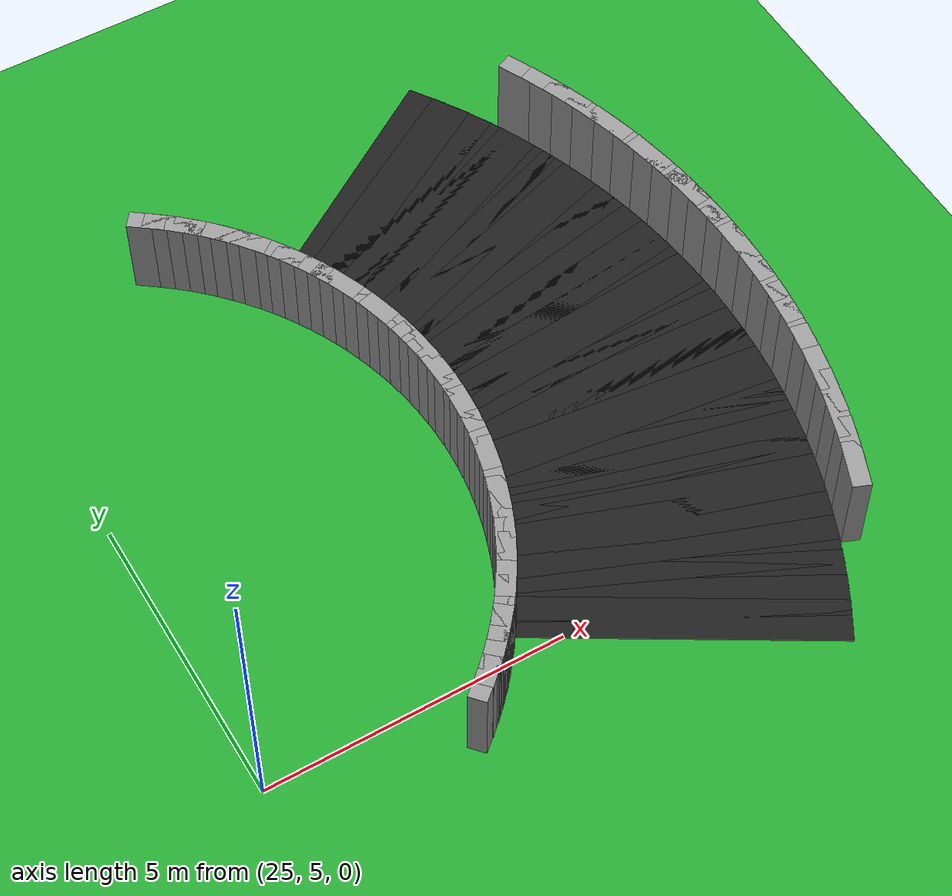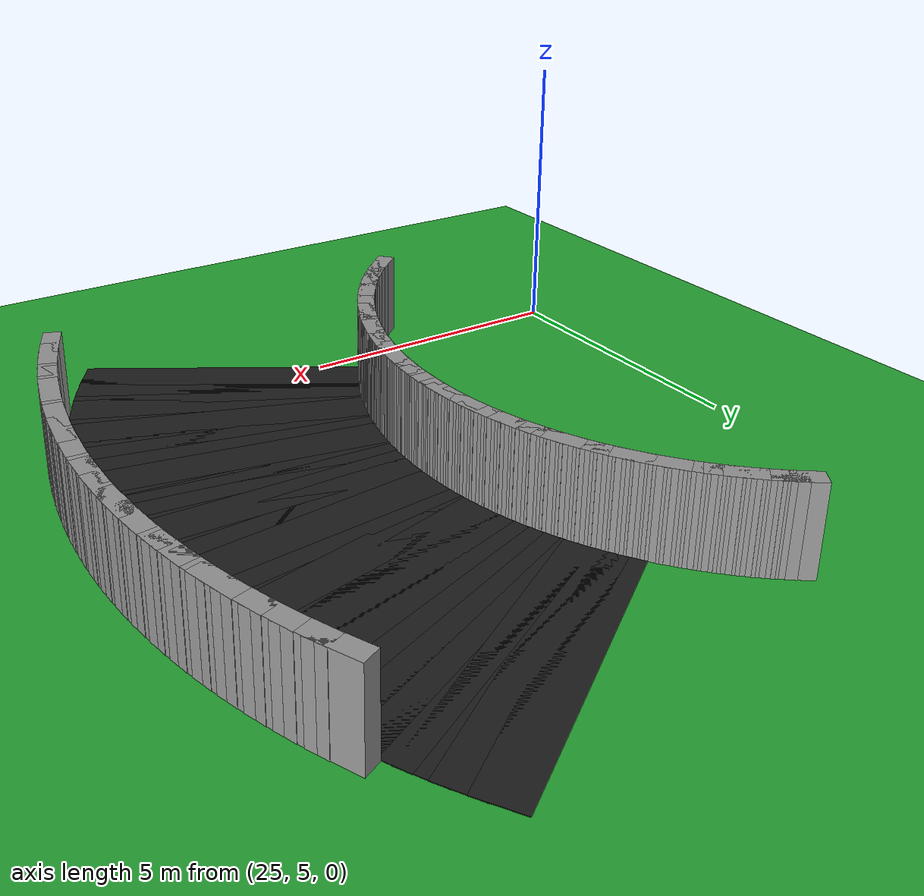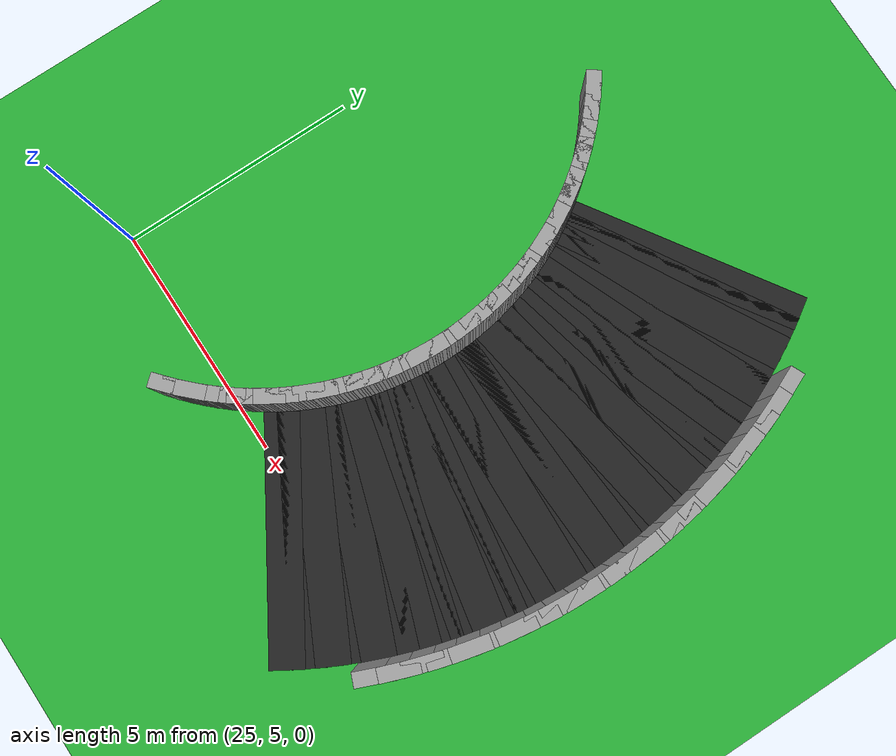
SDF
<sdf version="1.6">
 <world name="loop_stadium">
  <include><uri>model://sun</uri></include>
  <model name="ground_plane">
   <static>true</static>
   <link name="link">
    <collision name="collision">
     <surface><friction><ode><mu>100</mu><mu2>50</mu2></ode></friction></surface>
     <geometry><plane><normal>0 0 1</normal><size>120 120</size></plane></geometry>
    </collision>
    <visual name="visual">
     <geometry><plane><normal>0 0 1</normal><size>120 120</size></plane></geometry>
     <material>
      <script><uri>file://media/materials/scripts/gazebo.material</uri><name>Gazebo/Green</name></script>
     </material>
    </visual>
   </link>
  </model>
  <model name="curbL_87">
   <static>true</static>
   <pose>28.175 4.217 0.750 0 0 0.71752</pose>
   <link name="link">
    <collision name="collision"><geometry><box><size>0.606 0.300 1.500</size></box></geometry></collision>
    <visual name="visual">
     <geometry><box><size>0.606 0.300 1.500</size></box></geometry>
     <material>
      <script><uri>file://media/materials/scripts/gazebo.material</uri><name>Gazebo/Grey</name></script>
     </material>
    </visual>
   </link>
  </model>
  <model name="curbL_88">
   <static>true</static>
   <pose>28.357 4.382 0.750 0 0 0.75631</pose>
   <link name="link">
    <collision name="collision"><geometry><box><size>0.606 0.300 1.500</size></box></geometry></collision>
    <visual name="visual">
     <geometry><box><size>0.606 0.300 1.500</size></box></geometry>
     <material>
      <script><uri>file://media/materials/scripts/gazebo.material</uri><name>Gazebo/Grey</name></script>
     </material>
    </visual>
   </link>
  </model>
  <model name="curbL_89">
   <static>true</static>
   <pose>28.533 4.555 0.750 0 0 0.79509</pose>
   <link name="link">
    <collision name="collision"><geometry><box><size>0.606 0.300 1.500</size></box></geometry></collision>
    <visual name="visual">
     <geometry><box><size>0.606 0.300 1.500</size></box></geometry>
     <material>
      <script><uri>file://media/materials/scripts/gazebo.material</uri><name>Gazebo/Grey</name></script>
     </material>
    </visual>
   </link>
  </model>
  <model name="curbL_90">
   <static>true</static>
   <pose>28.702 4.734 0.750 0 0 0.83388</pose>
   <link name="link">
    <collision name="collision"><geometry><box><size>0.606 0.300 1.500</size></box></geometry></collision>
    <visual name="visual">
     <geometry><box><size>0.606 0.300 1.500</size></box></geometry>
     <material>
      <script><uri>file://media/materials/scripts/gazebo.material</uri><name>Gazebo/Grey</name></script>
     </material>
    </visual>
   </link>
  </model>
  <model name="curbL_91">
   <static>true</static>
   <pose>28.864 4.919 0.750 0 0 0.87266</pose>
   <link name="link">
    <collision name="collision"><geometry><box><size>0.606 0.300 1.500</size></box></geometry></collision>
    <visual name="visual">
     <geometry><box><size>0.606 0.300 1.500</size></box></geometry>
     <material>
      <script><uri>file://media/materials/scripts/gazebo.material</uri><name>Gazebo/Grey</name></script>
     </material>
    </visual>
   </link>
  </model>
  <model name="curbL_92">
   <static>true</static>
   <pose>29.018 5.111 0.750 0 0 0.91145</pose>
   <link name="link">
    <collision name="collision"><geometry><box><size>0.606 0.300 1.500</size></box></geometry></collision>
    <visual name="visual">
     <geometry><box><size>0.606 0.300 1.500</size></box></geometry>
     <material>
      <script><uri>file://media/materials/scripts/gazebo.material</uri><name>Gazebo/Grey</name></script>
     </material>
    </visual>
   </link>
  </model>
  <model name="curbL_93">
   <static>true</static>
   <pose>29.166 5.308 0.750 0 0 0.95023</pose>
   <link name="link">
    <collision name="collision"><geometry><box><size>0.606 0.300 1.500</size></box></geometry></collision>
    <visual name="visual">
     <geometry><box><size>0.606 0.300 1.500</size></box></geometry>
     <material>
      <script><uri>file://media/materials/scripts/gazebo.material</uri><name>Gazebo/Grey</name></script>
     </material>
    </visual>
   </link>
  </model>
  <model name="curbL_94">
   <static>true</static>
   <pose>29.305 5.512 0.750 0 0 0.98902</pose>
   <link name="link">
    <collision name="collision"><geometry><box><size>0.606 0.300 1.500</size></box></geometry></collision>
    <visual name="visual">
     <geometry><box><size>0.606 0.300 1.500</size></box></geometry>
     <material>
      <script><uri>file://media/materials/scripts/gazebo.material</uri><name>Gazebo/Grey</name></script>
     </material>
    </visual>
   </link>
  </model>
  <model name="asphalt_95">
   <static>true</static>
   <pose>31.705 4.351 0.005 0 0 1.02781</pose>
   <link name="link">
    <visual name="visual">
     <geometry><box><size>0.709 5.000 0.010</size></box></geometry>
     <material>
      <script><uri>file://media/materials/scripts/gazebo.material</uri><name>Gazebo/Black</name></script>
     </material>
    </visual>
   </link>
  </model>
  <model name="curbL_95">
   <static>true</static>
   <pose>29.436 5.720 0.750 0 0 1.02781</pose>
   <link name="link">
    <collision name="collision"><geometry><box><size>0.606 0.300 1.500</size></box></geometry></collision>
    <visual name="visual">
     <geometry><box><size>0.606 0.300 1.500</size></box></geometry>
     <material>
      <script><uri>file://media/materials/scripts/gazebo.material</uri><name>Gazebo/Grey</name></script>
     </material>
    </visual>
   </link>
  </model>
  <model name="asphalt_96">
   <static>true</static>
   <pose>31.879 4.653 0.005 0 0 1.06659</pose>
   <link name="link">
    <visual name="visual">
     <geometry><box><size>0.709 5.000 0.010</size></box></geometry>
     <material>
      <script><uri>file://media/materials/scripts/gazebo.material</uri><name>Gazebo/Black</name></script>
     </material>
    </visual>
   </link>
  </model>
  <model name="curbL_96">
   <static>true</static>
   <pose>29.559 5.933 0.750 0 0 1.06659</pose>
   <link name="link">
    <collision name="collision"><geometry><box><size>0.606 0.300 1.500</size></box></geometry></collision>
    <visual name="visual">
     <geometry><box><size>0.606 0.300 1.500</size></box></geometry>
     <material>
      <script><uri>file://media/materials/scripts/gazebo.material</uri><name>Gazebo/Grey</name></script>
     </material>
    </visual>
   </link>
  </model>
  <model name="asphalt_97">
   <static>true</static>
   <pose>32.042 4.962 0.005 0 0 1.10538</pose>
   <link name="link">
    <visual name="visual">
     <geometry><box><size>0.709 5.000 0.010</size></box></geometry>
     <material>
      <script><uri>file://media/materials/scripts/gazebo.material</uri><name>Gazebo/Black</name></script>
     </material>
    </visual>
   </link>
  </model>
  <model name="curbL_97">
   <static>true</static>
   <pose>29.674 6.151 0.750 0 0 1.10538</pose>
   <link name="link">
    <collision name="collision"><geometry><box><size>0.606 0.300 1.500</size></box></geometry></collision>
    <visual name="visual">
     <geometry><box><size>0.606 0.300 1.500</size></box></geometry>
     <material>
      <script><uri>file://media/materials/scripts/gazebo.material</uri><name>Gazebo/Grey</name></script>
     </material>
    </visual>
   </link>
  </model>
  <model name="asphalt_98">
   <static>true</static>
   <pose>32.192 5.277 0.005 0 0 1.14416</pose>
   <link name="link">
    <visual name="visual">
     <geometry><box><size>0.709 5.000 0.010</size></box></geometry>
     <material>
      <script><uri>file://media/materials/scripts/gazebo.material</uri><name>Gazebo/Black</name></script>
     </material>
    </visual>
   </link>
  </model>
  <model name="curbL_98">
   <static>true</static>
   <pose>29.780 6.373 0.750 0 0 1.14416</pose>
   <link name="link">
    <collision name="collision"><geometry><box><size>0.606 0.300 1.500</size></box></geometry></collision>
    <visual name="visual">
     <geometry><box><size>0.606 0.300 1.500</size></box></geometry>
     <material>
      <script><uri>file://media/materials/scripts/gazebo.material</uri><name>Gazebo/Grey</name></script>
     </material>
    </visual>
   </link>
  </model>
  <model name="asphalt_99">
   <static>true</static>
   <pose>32.330 5.597 0.005 0 0 1.18295</pose>
   <link name="link">
    <visual name="visual">
     <geometry><box><size>0.709 5.000 0.010</size></box></geometry>
     <material>
      <script><uri>file://media/materials/scripts/gazebo.material</uri><name>Gazebo/Black</name></script>
     </material>
    </visual>
   </link>
  </model>
  <model name="curbL_99">
   <static>true</static>
   <pose>29.878 6.599 0.750 0 0 1.18295</pose>
   <link name="link">
    <collision name="collision"><geometry><box><size>0.606 0.300 1.500</size></box></geometry></collision>
    <visual name="visual">
     <geometry><box><size>0.606 0.300 1.500</size></box></geometry>
     <material>
      <script><uri>file://media/materials/scripts/gazebo.material</uri><name>Gazebo/Grey</name></script>
     </material>
    </visual>
   </link>
  </model>
  <model name="curbR_99">
   <static>true</static>
   <pose>34.783 4.595 0.750 0 0 1.18295</pose>
   <link name="link">
    <collision name="collision"><geometry><box><size>0.812 0.300 1.500</size></box></geometry></collision>
    <visual name="visual">
     <geometry><box><size>0.812 0.300 1.500</size></box></geometry>
     <material>
      <script><uri>file://media/materials/scripts/gazebo.material</uri><name>Gazebo/Grey</name></script>
     </material>
    </visual>
   </link>
  </model>
  <model name="asphalt_100">
   <static>true</static>
   <pose>32.456 5.923 0.005 0 0 1.22173</pose>
   <link name="link">
    <visual name="visual">
     <geometry><box><size>0.709 5.000 0.010</size></box></geometry>
     <material>
      <script><uri>file://media/materials/scripts/gazebo.material</uri><name>Gazebo/Black</name></script>
     </material>
    </visual>
   </link>
  </model>
  <model name="curbL_100">
   <static>true</static>
   <pose>29.966 6.829 0.750 0 0 1.22173</pose>
   <link name="link">
    <collision name="collision"><geometry><box><size>0.606 0.300 1.500</size></box></geometry></collision>
    <visual name="visual">
     <geometry><box><size>0.606 0.300 1.500</size></box></geometry>
     <material>
      <script><uri>file://media/materials/scripts/gazebo.material</uri><name>Gazebo/Grey</name></script>
     </material>
    </visual>
   </link>
  </model>
  <model name="curbR_100">
   <static>true</static>
   <pose>34.946 5.017 0.750 0 0 1.22173</pose>
   <link name="link">
    <collision name="collision"><geometry><box><size>0.812 0.300 1.500</size></box></geometry></collision>
    <visual name="visual">
     <geometry><box><size>0.812 0.300 1.500</size></box></geometry>
     <material>
      <script><uri>file://media/materials/scripts/gazebo.material</uri><name>Gazebo/Grey</name></script>
     </material>
    </visual>
   </link>
  </model>
  <model name="asphalt_101">
   <static>true</static>
   <pose>32.569 6.253 0.005 0 0 1.26052</pose>
   <link name="link">
    <visual name="visual">
     <geometry><box><size>0.709 5.000 0.010</size></box></geometry>
     <material>
      <script><uri>file://media/materials/scripts/gazebo.material</uri><name>Gazebo/Black</name></script>
     </material>
    </visual>
   </link>
  </model>
  <model name="curbL_101">
   <static>true</static>
   <pose>30.046 7.062 0.750 0 0 1.26052</pose>
   <link name="link">
    <collision name="collision"><geometry><box><size>0.606 0.300 1.500</size></box></geometry></collision>
    <visual name="visual">
     <geometry><box><size>0.606 0.300 1.500</size></box></geometry>
     <material>
      <script><uri>file://media/materials/scripts/gazebo.material</uri><name>Gazebo/Grey</name></script>
     </material>
    </visual>
   </link>
  </model>
  <model name="curbR_101">
   <static>true</static>
   <pose>35.092 5.444 0.750 0 0 1.26052</pose>
   <link name="link">
    <collision name="collision"><geometry><box><size>0.812 0.300 1.500</size></box></geometry></collision>
    <visual name="visual">
     <geometry><box><size>0.812 0.300 1.500</size></box></geometry>
     <material>
      <script><uri>file://media/materials/scripts/gazebo.material</uri><name>Gazebo/Grey</name></script>
     </material>
    </visual>
   </link>
  </model>
  <model name="asphalt_102">
   <static>true</static>
   <pose>32.669 6.587 0.005 0 0 1.29930</pose>
   <link name="link">
    <visual name="visual">
     <geometry><box><size>0.709 5.000 0.010</size></box></geometry>
     <material>
      <script><uri>file://media/materials/scripts/gazebo.material</uri><name>Gazebo/Black</name></script>
     </material>
    </visual>
   </link>
  </model>
  <model name="curbL_102">
   <static>true</static>
   <pose>30.117 7.298 0.750 0 0 1.29930</pose>
   <link name="link">
    <collision name="collision"><geometry><box><size>0.606 0.300 1.500</size></box></geometry></collision>
    <visual name="visual">
     <geometry><box><size>0.606 0.300 1.500</size></box></geometry>
     <material>
      <script><uri>file://media/materials/scripts/gazebo.material</uri><name>Gazebo/Grey</name></script>
     </material>
    </visual>
   </link>
  </model>
  <model name="curbR_102">
   <static>true</static>
   <pose>35.222 5.877 0.750 0 0 1.29930</pose>
   <link name="link">
    <collision name="collision"><geometry><box><size>0.812 0.300 1.500</size></box></geometry></collision>
    <visual name="visual">
     <geometry><box><size>0.812 0.300 1.500</size></box></geometry>
     <material>
      <script><uri>file://media/materials/scripts/gazebo.material</uri><name>Gazebo/Grey</name></script>
     </material>
    </visual>
   </link>
  </model>
  <model name="asphalt_103">
   <static>true</static>
   <pose>32.756 6.925 0.005 0 0 1.33809</pose>
   <link name="link">
    <visual name="visual">
     <geometry><box><size>0.709 5.000 0.010</size></box></geometry>
     <material>
      <script><uri>file://media/materials/scripts/gazebo.material</uri><name>Gazebo/Black</name></script>
     </material>
    </visual>
   </link>
  </model>
  <model name="curbL_103">
   <static>true</static>
   <pose>30.178 7.536 0.750 0 0 1.33809</pose>
   <link name="link">
    <collision name="collision"><geometry><box><size>0.606 0.300 1.500</size></box></geometry></collision>
    <visual name="visual">
     <geometry><box><size>0.606 0.300 1.500</size></box></geometry>
     <material>
      <script><uri>file://media/materials/scripts/gazebo.material</uri><name>Gazebo/Grey</name></script>
     </material>
    </visual>
   </link>
  </model>
  <model name="curbR_103">
   <static>true</static>
   <pose>35.334 6.314 0.750 0 0 1.33809</pose>
   <link name="link">
    <collision name="collision"><geometry><box><size>0.812 0.300 1.500</size></box></geometry></collision>
    <visual name="visual">
     <geometry><box><size>0.812 0.300 1.500</size></box></geometry>
     <material>
      <script><uri>file://media/materials/scripts/gazebo.material</uri><name>Gazebo/Grey</name></script>
     </material>
    </visual>
   </link>
  </model>
  <model name="asphalt_104">
   <static>true</static>
   <pose>32.830 7.266 0.005 0 0 1.37687</pose>
   <link name="link">
    <visual name="visual">
     <geometry><box><size>0.709 5.000 0.010</size></box></geometry>
     <material>
      <script><uri>file://media/materials/scripts/gazebo.material</uri><name>Gazebo/Black</name></script>
     </material>
    </visual>
   </link>
  </model>
  <model name="curbL_104">
   <static>true</static>
   <pose>30.230 7.777 0.750 0 0 1.37687</pose>
   <link name="link">
    <collision name="collision"><geometry><box><size>0.606 0.300 1.500</size></box></geometry></collision>
    <visual name="visual">
     <geometry><box><size>0.606 0.300 1.500</size></box></geometry>
     <material>
      <script><uri>file://media/materials/scripts/gazebo.material</uri><name>Gazebo/Grey</name></script>
     </material>
    </visual>
   </link>
  </model>
  <model name="curbR_104">
   <static>true</static>
   <pose>35.430 6.756 0.750 0 0 1.37687</pose>
   <link name="link">
    <collision name="collision"><geometry><box><size>0.812 0.300 1.500</size></box></geometry></collision>
    <visual name="visual">
     <geometry><box><size>0.812 0.300 1.500</size></box></geometry>
     <material>
      <script><uri>file://media/materials/scripts/gazebo.material</uri><name>Gazebo/Grey</name></script>
     </material>
    </visual>
   </link>
  </model>
  <model name="asphalt_105">
   <static>true</static>
   <pose>32.891 7.610 0.005 0 0 1.41566</pose>
   <link name="link">
    <visual name="visual">
     <geometry><box><size>0.709 5.000 0.010</size></box></geometry>
     <material>
      <script><uri>file://media/materials/scripts/gazebo.material</uri><name>Gazebo/Black</name></script>
     </material>
    </visual>
   </link>
  </model>
  <model name="curbL_105">
   <static>true</static>
   <pose>30.273 8.019 0.750 0 0 1.41566</pose>
   <link name="link">
    <collision name="collision"><geometry><box><size>0.606 0.300 1.500</size></box></geometry></collision>
    <visual name="visual">
     <geometry><box><size>0.606 0.300 1.500</size></box></geometry>
     <material>
      <script><uri>file://media/materials/scripts/gazebo.material</uri><name>Gazebo/Grey</name></script>
     </material>
    </visual>
   </link>
  </model>
  <model name="curbR_105">
   <static>true</static>
   <pose>35.508 7.201 0.750 0 0 1.41566</pose>
   <link name="link">
    <collision name="collision"><geometry><box><size>0.812 0.300 1.500</size></box></geometry></collision>
    <visual name="visual">
     <geometry><box><size>0.812 0.300 1.500</size></box></geometry>
     <material>
      <script><uri>file://media/materials/scripts/gazebo.material</uri><name>Gazebo/Grey</name></script>
     </material>
    </visual>
   </link>
  </model>
  <model name="asphalt_106">
   <static>true</static>
   <pose>32.938 7.956 0.005 0 0 1.45444</pose>
   <link name="link">
    <visual name="visual">
     <geometry><box><size>0.709 5.000 0.010</size></box></geometry>
     <material>
      <script><uri>file://media/materials/scripts/gazebo.material</uri><name>Gazebo/Black</name></script>
     </material>
    </visual>
   </link>
  </model>
  <model name="curbL_106">
   <static>true</static>
   <pose>30.306 8.263 0.750 0 0 1.45444</pose>
   <link name="link">
    <collision name="collision"><geometry><box><size>0.606 0.300 1.500</size></box></geometry></collision>
    <visual name="visual">
     <geometry><box><size>0.606 0.300 1.500</size></box></geometry>
     <material>
      <script><uri>file://media/materials/scripts/gazebo.material</uri><name>Gazebo/Grey</name></script>
     </material>
    </visual>
   </link>
  </model>
  <model name="curbR_106">
   <static>true</static>
   <pose>35.570 7.648 0.750 0 0 1.45444</pose>
   <link name="link">
    <collision name="collision"><geometry><box><size>0.812 0.300 1.500</size></box></geometry></collision>
    <visual name="visual">
     <geometry><box><size>0.812 0.300 1.500</size></box></geometry>
     <material>
      <script><uri>file://media/materials/scripts/gazebo.material</uri><name>Gazebo/Grey</name></script>
     </material>
    </visual>
   </link>
  </model>
  <model name="asphalt_107">
   <static>true</static>
   <pose>32.972 8.303 0.005 0 0 1.49323</pose>
   <link name="link">
    <visual name="visual">
     <geometry><box><size>0.709 5.000 0.010</size></box></geometry>
     <material>
      <script><uri>file://media/materials/scripts/gazebo.material</uri><name>Gazebo/Black</name></script>
     </material>
    </visual>
   </link>
  </model>
  <model name="curbL_107">
   <static>true</static>
   <pose>30.330 8.509 0.750 0 0 1.49323</pose>
   <link name="link">
    <collision name="collision"><geometry><box><size>0.606 0.300 1.500</size></box></geometry></collision>
    <visual name="visual">
     <geometry><box><size>0.606 0.300 1.500</size></box></geometry>
     <material>
      <script><uri>file://media/materials/scripts/gazebo.material</uri><name>Gazebo/Grey</name></script>
     </material>
    </visual>
   </link>
  </model>
  <model name="curbR_107">
   <static>true</static>
   <pose>35.613 8.098 0.750 0 0 1.49323</pose>
   <link name="link">
    <collision name="collision"><geometry><box><size>0.812 0.300 1.500</size></box></geometry></collision>
    <visual name="visual">
     <geometry><box><size>0.812 0.300 1.500</size></box></geometry>
     <material>
      <script><uri>file://media/materials/scripts/gazebo.material</uri><name>Gazebo/Grey</name></script>
     </material>
    </visual>
   </link>
  </model>
  <model name="asphalt_108">
   <static>true</static>
   <pose>32.992 8.652 0.005 0 0 1.53201</pose>
   <link name="link">
    <visual name="visual">
     <geometry><box><size>0.709 5.000 0.010</size></box></geometry>
     <material>
      <script><uri>file://media/materials/scripts/gazebo.material</uri><name>Gazebo/Black</name></script>
     </material>
    </visual>
   </link>
  </model>
  <model name="curbL_108">
   <static>true</static>
   <pose>30.345 8.754 0.750 0 0 1.53201</pose>
   <link name="link">
    <collision name="collision"><geometry><box><size>0.606 0.300 1.500</size></box></geometry></collision>
    <visual name="visual">
     <geometry><box><size>0.606 0.300 1.500</size></box></geometry>
     <material>
      <script><uri>file://media/materials/scripts/gazebo.material</uri><name>Gazebo/Grey</name></script>
     </material>
    </visual>
   </link>
  </model>
  <model name="curbR_108">
   <static>true</static>
   <pose>35.640 8.549 0.750 0 0 1.53201</pose>
   <link name="link">
    <collision name="collision"><geometry><box><size>0.812 0.300 1.500</size></box></geometry></collision>
    <visual name="visual">
     <geometry><box><size>0.812 0.300 1.500</size></box></geometry>
     <material>
      <script><uri>file://media/materials/scripts/gazebo.material</uri><name>Gazebo/Grey</name></script>
     </material>
    </visual>
   </link>
  </model>
  <model name="asphalt_109">
   <static>true</static>
   <pose>32.999 9.001 0.005 0 0 1.57080</pose>
   <link name="link">
    <visual name="visual">
     <geometry><box><size>0.709 5.000 0.010</size></box></geometry>
     <material>
      <script><uri>file://media/materials/scripts/gazebo.material</uri><name>Gazebo/Black</name></script>
     </material>
    </visual>
   </link>
  </model>
  <model name="curbL_109">
   <static>true</static>
   <pose>30.349 9.001 0.750 0 0 1.57080</pose>
   <link name="link">
    <collision name="collision"><geometry><box><size>0.606 0.300 1.500</size></box></geometry></collision>
    <visual name="visual">
     <geometry><box><size>0.606 0.300 1.500</size></box></geometry>
     <material>
      <script><uri>file://media/materials/scripts/gazebo.material</uri><name>Gazebo/Grey</name></script>
     </material>
    </visual>
   </link>
  </model>
  <model name="curbR_109">
   <static>true</static>
   <pose>35.648 9.001 0.750 0 0 1.57080</pose>
   <link name="link">
    <collision name="collision"><geometry><box><size>0.812 0.300 1.500</size></box></geometry></collision>
    <visual name="visual">
     <geometry><box><size>0.812 0.300 1.500</size></box></geometry>
     <material>
      <script><uri>file://media/materials/scripts/gazebo.material</uri><name>Gazebo/Grey</name></script>
     </material>
    </visual>
   </link>
  </model>
  <model name="asphalt_110">
   <static>true</static>
   <pose>32.992 9.349 0.005 0 0 1.60958</pose>
   <link name="link">
    <visual name="visual">
     <geometry><box><size>0.709 5.000 0.010</size></box></geometry>
     <material>
      <script><uri>file://media/materials/scripts/gazebo.material</uri><name>Gazebo/Black</name></script>
     </material>
    </visual>
   </link>
  </model>
  <model name="curbL_110">
   <static>true</static>
   <pose>30.345 9.247 0.750 0 0 1.60958</pose>
   <link name="link">
    <collision name="collision"><geometry><box><size>0.606 0.300 1.500</size></box></geometry></collision>
    <visual name="visual">
     <geometry><box><size>0.606 0.300 1.500</size></box></geometry>
     <material>
      <script><uri>file://media/materials/scripts/gazebo.material</uri><name>Gazebo/Grey</name></script>
     </material>
    </visual>
   </link>
  </model>
  <model name="curbR_110">
   <static>true</static>
   <pose>35.640 9.452 0.750 0 0 1.60958</pose>
   <link name="link">
    <collision name="collision"><geometry><box><size>0.812 0.300 1.500</size></box></geometry></collision>
    <visual name="visual">
     <geometry><box><size>0.812 0.300 1.500</size></box></geometry>
     <material>
      <script><uri>file://media/materials/scripts/gazebo.material</uri><name>Gazebo/Grey</name></script>
     </material>
    </visual>
   </link>
  </model>
  <model name="asphalt_111">
   <static>true</static>
   <pose>32.972 9.698 0.005 0 0 1.64837</pose>
   <link name="link">
    <visual name="visual">
     <geometry><box><size>0.709 5.000 0.010</size></box></geometry>
     <material>
      <script><uri>file://media/materials/scripts/gazebo.material</uri><name>Gazebo/Black</name></script>
     </material>
    </visual>
   </link>
  </model>
  <model name="curbL_111">
   <static>true</static>
   <pose>30.330 9.493 0.750 0 0 1.64837</pose>
   <link name="link">
    <collision name="collision"><geometry><box><size>0.606 0.300 1.500</size></box></geometry></collision>
    <visual name="visual">
     <geometry><box><size>0.606 0.300 1.500</size></box></geometry>
     <material>
      <script><uri>file://media/materials/scripts/gazebo.material</uri><name>Gazebo/Grey</name></script>
     </material>
    </visual>
   </link>
  </model>
  <model name="curbR_111">
   <static>true</static>
   <pose>35.613 9.903 0.750 0 0 1.64837</pose>
   <link name="link">
    <collision name="collision"><geometry><box><size>0.812 0.300 1.500</size></box></geometry></collision>
    <visual name="visual">
     <geometry><box><size>0.812 0.300 1.500</size></box></geometry>
     <material>
      <script><uri>file://media/materials/scripts/gazebo.material</uri><name>Gazebo/Grey</name></script>
     </material>
    </visual>
   </link>
  </model>
  <model name="asphalt_112">
   <static>true</static>
   <pose>32.938 10.045 0.005 0 0 1.68715</pose>
   <link name="link">
    <visual name="visual">
     <geometry><box><size>0.709 5.000 0.010</size></box></geometry>
     <material>
      <script><uri>file://media/materials/scripts/gazebo.material</uri><name>Gazebo/Black</name></script>
     </material>
    </visual>
   </link>
  </model>
  <model name="curbL_112">
   <static>true</static>
   <pose>30.306 9.738 0.750 0 0 1.68715</pose>
   <link name="link">
    <collision name="collision"><geometry><box><size>0.606 0.300 1.500</size></box></geometry></collision>
    <visual name="visual">
     <geometry><box><size>0.606 0.300 1.500</size></box></geometry>
     <material>
      <script><uri>file://media/materials/scripts/gazebo.material</uri><name>Gazebo/Grey</name></script>
     </material>
    </visual>
   </link>
  </model>
  <model name="curbR_112">
   <static>true</static>
   <pose>35.570 10.353 0.750 0 0 1.68715</pose>
   <link name="link">
    <collision name="collision"><geometry><box><size>0.812 0.300 1.500</size></box></geometry></collision>
    <visual name="visual">
     <geometry><box><size>0.812 0.300 1.500</size></box></geometry>
     <material>
      <script><uri>file://media/materials/scripts/gazebo.material</uri><name>Gazebo/Grey</name></script>
     </material>
    </visual>
   </link>
  </model>
  <model name="asphalt_113">
   <static>true</static>
   <pose>32.891 10.391 0.005 0 0 1.72594</pose>
   <link name="link">
    <visual name="visual">
     <geometry><box><size>0.709 5.000 0.010</size></box></geometry>
     <material>
      <script><uri>file://media/materials/scripts/gazebo.material</uri><name>Gazebo/Black</name></script>
     </material>
    </visual>
   </link>
  </model>
  <model name="curbL_113">
   <static>true</static>
   <pose>30.273 9.982 0.750 0 0 1.72594</pose>
   <link name="link">
    <collision name="collision"><geometry><box><size>0.606 0.300 1.500</size></box></geometry></collision>
    <visual name="visual">
     <geometry><box><size>0.606 0.300 1.500</size></box></geometry>
     <material>
      <script><uri>file://media/materials/scripts/gazebo.material</uri><name>Gazebo/Grey</name></script>
     </material>
    </visual>
   </link>
  </model>
  <model name="curbR_113">
   <static>true</static>
   <pose>35.508 10.800 0.750 0 0 1.72594</pose>
   <link name="link">
    <collision name="collision"><geometry><box><size>0.812 0.300 1.500</size></box></geometry></collision>
    <visual name="visual">
     <geometry><box><size>0.812 0.300 1.500</size></box></geometry>
     <material>
      <script><uri>file://media/materials/scripts/gazebo.material</uri><name>Gazebo/Grey</name></script>
     </material>
    </visual>
   </link>
  </model>
  <model name="asphalt_114">
   <static>true</static>
   <pose>32.830 10.735 0.005 0 0 1.76472</pose>
   <link name="link">
    <visual name="visual">
     <geometry><box><size>0.709 5.000 0.010</size></box></geometry>
     <material>
      <script><uri>file://media/materials/scripts/gazebo.material</uri><name>Gazebo/Black</name></script>
     </material>
    </visual>
   </link>
  </model>
  <model name="curbL_114">
   <static>true</static>
   <pose>30.230 10.224 0.750 0 0 1.76472</pose>
   <link name="link">
    <collision name="collision"><geometry><box><size>0.606 0.300 1.500</size></box></geometry></collision>
    <visual name="visual">
     <geometry><box><size>0.606 0.300 1.500</size></box></geometry>
     <material>
      <script><uri>file://media/materials/scripts/gazebo.material</uri><name>Gazebo/Grey</name></script>
     </material>
    </visual>
   </link>
  </model>
  <model name="curbR_114">
   <static>true</static>
   <pose>35.430 11.245 0.750 0 0 1.76472</pose>
   <link name="link">
    <collision name="collision"><geometry><box><size>0.812 0.300 1.500</size></box></geometry></collision>
    <visual name="visual">
     <geometry><box><size>0.812 0.300 1.500</size></box></geometry>
     <material>
      <script><uri>file://media/materials/scripts/gazebo.material</uri><name>Gazebo/Grey</name></script>
     </material>
    </visual>
   </link>
  </model>
  <model name="asphalt_115">
   <static>true</static>
   <pose>32.756 11.076 0.005 0 0 1.80351</pose>
   <link name="link">
    <visual name="visual">
     <geometry><box><size>0.709 5.000 0.010</size></box></geometry>
     <material>
      <script><uri>file://media/materials/scripts/gazebo.material</uri><name>Gazebo/Black</name></script>
     </material>
    </visual>
   </link>
  </model>
  <model name="curbL_115">
   <static>true</static>
   <pose>30.178 10.465 0.750 0 0 1.80351</pose>
   <link name="link">
    <collision name="collision"><geometry><box><size>0.606 0.300 1.500</size></box></geometry></collision>
    <visual name="visual">
     <geometry><box><size>0.606 0.300 1.500</size></box></geometry>
     <material>
      <script><uri>file://media/materials/scripts/gazebo.material</uri><name>Gazebo/Grey</name></script>
     </material>
    </visual>
   </link>
  </model>
  <model name="curbR_115">
   <static>true</static>
   <pose>35.334 11.687 0.750 0 0 1.80351</pose>
   <link name="link">
    <collision name="collision"><geometry><box><size>0.812 0.300 1.500</size></box></geometry></collision>
    <visual name="visual">
     <geometry><box><size>0.812 0.300 1.500</size></box></geometry>
     <material>
      <script><uri>file://media/materials/scripts/gazebo.material</uri><name>Gazebo/Grey</name></script>
     </material>
    </visual>
   </link>
  </model>
  <model name="asphalt_116">
   <static>true</static>
   <pose>32.669 11.414 0.005 0 0 1.84229</pose>
   <link name="link">
    <visual name="visual">
     <geometry><box><size>0.709 5.000 0.010</size></box></geometry>
     <material>
      <script><uri>file://media/materials/scripts/gazebo.material</uri><name>Gazebo/Black</name></script>
     </material>
    </visual>
   </link>
  </model>
  <model name="curbL_116">
   <static>true</static>
   <pose>30.117 10.703 0.750 0 0 1.84229</pose>
   <link name="link">
    <collision name="collision"><geometry><box><size>0.606 0.300 1.500</size></box></geometry></collision>
    <visual name="visual">
     <geometry><box><size>0.606 0.300 1.500</size></box></geometry>
     <material>
      <script><uri>file://media/materials/scripts/gazebo.material</uri><name>Gazebo/Grey</name></script>
     </material>
    </visual>
   </link>
  </model>
  <model name="curbR_116">
   <static>true</static>
   <pose>35.222 12.124 0.750 0 0 1.84229</pose>
   <link name="link">
    <collision name="collision"><geometry><box><size>0.812 0.300 1.500</size></box></geometry></collision>
    <visual name="visual">
     <geometry><box><size>0.812 0.300 1.500</size></box></geometry>
     <material>
      <script><uri>file://media/materials/scripts/gazebo.material</uri><name>Gazebo/Grey</name></script>
     </material>
    </visual>
   </link>
  </model>
  <model name="asphalt_117">
   <static>true</static>
   <pose>32.569 11.748 0.005 0 0 1.88108</pose>
   <link name="link">
    <visual name="visual">
     <geometry><box><size>0.709 5.000 0.010</size></box></geometry>
     <material>
      <script><uri>file://media/materials/scripts/gazebo.material</uri><name>Gazebo/Black</name></script>
     </material>
    </visual>
   </link>
  </model>
  <model name="curbL_117">
   <static>true</static>
   <pose>30.046 10.939 0.750 0 0 1.88108</pose>
   <link name="link">
    <collision name="collision"><geometry><box><size>0.606 0.300 1.500</size></box></geometry></collision>
    <visual name="visual">
     <geometry><box><size>0.606 0.300 1.500</size></box></geometry>
     <material>
      <script><uri>file://media/materials/scripts/gazebo.material</uri><name>Gazebo/Grey</name></script>
     </material>
    </visual>
   </link>
  </model>
  <model name="curbR_117">
   <static>true</static>
   <pose>35.092 12.557 0.750 0 0 1.88108</pose>
   <link name="link">
    <collision name="collision"><geometry><box><size>0.812 0.300 1.500</size></box></geometry></collision>
    <visual name="visual">
     <geometry><box><size>0.812 0.300 1.500</size></box></geometry>
     <material>
      <script><uri>file://media/materials/scripts/gazebo.material</uri><name>Gazebo/Grey</name></script>
     </material>
    </visual>
   </link>
  </model>
  <model name="asphalt_118">
   <static>true</static>
   <pose>32.456 12.078 0.005 0 0 1.91986</pose>
   <link name="link">
    <visual name="visual">
     <geometry><box><size>0.709 5.000 0.010</size></box></geometry>
     <material>
      <script><uri>file://media/materials/scripts/gazebo.material</uri><name>Gazebo/Black</name></script>
     </material>
    </visual>
   </link>
  </model>
  <model name="curbL_118">
   <static>true</static>
   <pose>29.966 11.172 0.750 0 0 1.91986</pose>
   <link name="link">
    <collision name="collision"><geometry><box><size>0.606 0.300 1.500</size></box></geometry></collision>
    <visual name="visual">
     <geometry><box><size>0.606 0.300 1.500</size></box></geometry>
     <material>
      <script><uri>file://media/materials/scripts/gazebo.material</uri><name>Gazebo/Grey</name></script>
     </material>
    </visual>
   </link>
  </model>
  <model name="curbR_118">
   <static>true</static>
   <pose>34.946 12.985 0.750 0 0 1.91986</pose>
   <link name="link">
    <collision name="collision"><geometry><box><size>0.812 0.300 1.500</size></box></geometry></collision>
    <visual name="visual">
     <geometry><box><size>0.812 0.300 1.500</size></box></geometry>
     <material>
      <script><uri>file://media/materials/scripts/gazebo.material</uri><name>Gazebo/Grey</name></script>
     </material>
    </visual>
   </link>
  </model>
  <model name="asphalt_119">
   <static>true</static>
   <pose>32.330 12.404 0.005 0 0 1.95865</pose>
   <link name="link">
    <visual name="visual">
     <geometry><box><size>0.709 5.000 0.010</size></box></geometry>
     <material>
      <script><uri>file://media/materials/scripts/gazebo.material</uri><name>Gazebo/Black</name></script>
     </material>
    </visual>
   </link>
  </model>
  <model name="curbL_119">
   <static>true</static>
   <pose>29.878 11.402 0.750 0 0 1.95865</pose>
   <link name="link">
    <collision name="collision"><geometry><box><size>0.606 0.300 1.500</size></box></geometry></collision>
    <visual name="visual">
     <geometry><box><size>0.606 0.300 1.500</size></box></geometry>
     <material>
      <script><uri>file://media/materials/scripts/gazebo.material</uri><name>Gazebo/Grey</name></script>
     </material>
    </visual>
   </link>
  </model>
  <model name="curbR_119">
   <static>true</static>
   <pose>34.783 13.406 0.750 0 0 1.95865</pose>
   <link name="link">
    <collision name="collision"><geometry><box><size>0.812 0.300 1.500</size></box></geometry></collision>
    <visual name="visual">
     <geometry><box><size>0.812 0.300 1.500</size></box></geometry>
     <material>
      <script><uri>file://media/materials/scripts/gazebo.material</uri><name>Gazebo/Grey</name></script>
     </material>
    </visual>
   </link>
  </model>
  <model name="asphalt_120">
   <static>true</static>
   <pose>32.192 12.724 0.005 0 0 1.99743</pose>
   <link name="link">
    <visual name="visual">
     <geometry><box><size>0.709 5.000 0.010</size></box></geometry>
     <material>
      <script><uri>file://media/materials/scripts/gazebo.material</uri><name>Gazebo/Black</name></script>
     </material>
    </visual>
   </link>
  </model>
  <model name="curbL_120">
   <static>true</static>
   <pose>29.780 11.628 0.750 0 0 1.99743</pose>
   <link name="link">
    <collision name="collision"><geometry><box><size>0.606 0.300 1.500</size></box></geometry></collision>
    <visual name="visual">
     <geometry><box><size>0.606 0.300 1.500</size></box></geometry>
     <material>
      <script><uri>file://media/materials/scripts/gazebo.material</uri><name>Gazebo/Grey</name></script>
     </material>
    </visual>
   </link>
  </model>
  <model name="curbR_120">
   <static>true</static>
   <pose>34.604 13.821 0.750 0 0 1.99743</pose>
   <link name="link">
    <collision name="collision"><geometry><box><size>0.812 0.300 1.500</size></box></geometry></collision>
    <visual name="visual">
     <geometry><box><size>0.812 0.300 1.500</size></box></geometry>
     <material>
      <script><uri>file://media/materials/scripts/gazebo.material</uri><name>Gazebo/Grey</name></script>
     </material>
    </visual>
   </link>
  </model>
  <model name="asphalt_121">
   <static>true</static>
   <pose>32.042 13.039 0.005 0 0 2.03622</pose>
   <link name="link">
    <visual name="visual">
     <geometry><box><size>0.709 5.000 0.010</size></box></geometry>
     <material>
      <script><uri>file://media/materials/scripts/gazebo.material</uri><name>Gazebo/Black</name></script>
     </material>
    </visual>
   </link>
  </model>
  <model name="curbL_121">
   <static>true</static>
   <pose>29.674 11.850 0.750 0 0 2.03622</pose>
   <link name="link">
    <collision name="collision"><geometry><box><size>0.606 0.300 1.500</size></box></geometry></collision>
    <visual name="visual">
     <geometry><box><size>0.606 0.300 1.500</size></box></geometry>
     <material>
      <script><uri>file://media/materials/scripts/gazebo.material</uri><name>Gazebo/Grey</name></script>
     </material>
    </visual>
   </link>
  </model>
  <model name="asphalt_122">
   <static>true</static>
   <pose>31.879 13.348 0.005 0 0 2.07500</pose>
   <link name="link">
    <visual name="visual">
     <geometry><box><size>0.709 5.000 0.010</size></box></geometry>
     <material>
      <script><uri>file://media/materials/scripts/gazebo.material</uri><name>Gazebo/Black</name></script>
     </material>
    </visual>
   </link>
  </model>
  <model name="curbL_122">
   <static>true</static>
   <pose>29.559 12.068 0.750 0 0 2.07500</pose>
   <link name="link">
    <collision name="collision"><geometry><box><size>0.606 0.300 1.500</size></box></geometry></collision>
    <visual name="visual">
     <geometry><box><size>0.606 0.300 1.500</size></box></geometry>
     <material>
      <script><uri>file://media/materials/scripts/gazebo.material</uri><name>Gazebo/Grey</name></script>
     </material>
    </visual>
   </link>
  </model>
  <model name="asphalt_123">
   <static>true</static>
   <pose>31.705 13.650 0.005 0 0 2.11379</pose>
   <link name="link">
    <visual name="visual">
     <geometry><box><size>0.709 5.000 0.010</size></box></geometry>
     <material>
      <script><uri>file://media/materials/scripts/gazebo.material</uri><name>Gazebo/Black</name></script>
     </material>
    </visual>
   </link>
  </model>
  <model name="curbL_123">
   <static>true</static>
   <pose>29.436 12.281 0.750 0 0 2.11379</pose>
   <link name="link">
    <collision name="collision"><geometry><box><size>0.606 0.300 1.500</size></box></geometry></collision>
    <visual name="visual">
     <geometry><box><size>0.606 0.300 1.500</size></box></geometry>
     <material>
      <script><uri>file://media/materials/scripts/gazebo.material</uri><name>Gazebo/Grey</name></script>
     </material>
    </visual>
   </link>
  </model>
  <model name="asphalt_124">
   <static>true</static>
   <pose>31.518 13.946 0.005 0 0 2.15257</pose>
   <link name="link">
    <visual name="visual">
     <geometry><box><size>0.709 5.000 0.010</size></box></geometry>
     <material>
      <script><uri>file://media/materials/scripts/gazebo.material</uri><name>Gazebo/Black</name></script>
     </material>
    </visual>
   </link>
  </model>
  <model name="curbL_124">
   <static>true</static>
   <pose>29.305 12.490 0.750 0 0 2.15257</pose>
   <link name="link">
    <collision name="collision"><geometry><box><size>0.606 0.300 1.500</size></box></geometry></collision>
    <visual name="visual">
     <geometry><box><size>0.606 0.300 1.500</size></box></geometry>
     <material>
      <script><uri>file://media/materials/scripts/gazebo.material</uri><name>Gazebo/Grey</name></script>
     </material>
    </visual>
   </link>
  </model>
  <model name="curbL_125">
   <static>true</static>
   <pose>29.166 12.693 0.750 0 0 2.19136</pose>
   <link name="link">
    <collision name="collision"><geometry><box><size>0.606 0.300 1.500</size></box></geometry></collision>
    <visual name="visual">
     <geometry><box><size>0.606 0.300 1.500</size></box></geometry>
     <material>
      <script><uri>file://media/materials/scripts/gazebo.material</uri><name>Gazebo/Grey</name></script>
     </material>
    </visual>
   </link>
  </model>
  <model name="curbL_126">
   <static>true</static>
   <pose>29.018 12.890 0.750 0 0 2.23014</pose>
   <link name="link">
    <collision name="collision"><geometry><box><size>0.606 0.300 1.500</size></box></geometry></collision>
    <visual name="visual">
     <geometry><box><size>0.606 0.300 1.500</size></box></geometry>
     <material>
      <script><uri>file://media/materials/scripts/gazebo.material</uri><name>Gazebo/Grey</name></script>
     </material>
    </visual>
   </link>
  </model>
  <model name="curbL_127">
   <static>true</static>
   <pose>28.864 13.082 0.750 0 0 2.26893</pose>
   <link name="link">
    <collision name="collision"><geometry><box><size>0.606 0.300 1.500</size></box></geometry></collision>
    <visual name="visual">
     <geometry><box><size>0.606 0.300 1.500</size></box></geometry>
     <material>
      <script><uri>file://media/materials/scripts/gazebo.material</uri><name>Gazebo/Grey</name></script>
     </material>
    </visual>
   </link>
  </model>
  <model name="curbL_128">
   <static>true</static>
   <pose>28.702 13.267 0.750 0 0 2.30771</pose>
   <link name="link">
    <collision name="collision"><geometry><box><size>0.606 0.300 1.500</size></box></geometry></collision>
    <visual name="visual">
     <geometry><box><size>0.606 0.300 1.500</size></box></geometry>
     <material>
      <script><uri>file://media/materials/scripts/gazebo.material</uri><name>Gazebo/Grey</name></script>
     </material>
    </visual>
   </link>
  </model>
  <model name="curbL_129">
   <static>true</static>
   <pose>28.533 13.447 0.750 0 0 2.34650</pose>
   <link name="link">
    <collision name="collision"><geometry><box><size>0.606 0.300 1.500</size></box></geometry></collision>
    <visual name="visual">
     <geometry><box><size>0.606 0.300 1.500</size></box></geometry>
     <material>
      <script><uri>file://media/materials/scripts/gazebo.material</uri><name>Gazebo/Grey</name></script>
     </material>
    </visual>
   </link>
  </model>
  <model name="curbL_130">
   <static>true</static>
   <pose>28.357 13.619 0.750 0 0 2.38528</pose>
   <link name="link">
    <collision name="collision"><geometry><box><size>0.606 0.300 1.500</size></box></geometry></collision>
    <visual name="visual">
     <geometry><box><size>0.606 0.300 1.500</size></box></geometry>
     <material>
      <script><uri>file://media/materials/scripts/gazebo.material</uri><name>Gazebo/Grey</name></script>
     </material>
    </visual>
   </link>
  </model>
  <model name="curbL_131">
   <static>true</static>
   <pose>28.175 13.784 0.750 0 0 2.42407</pose>
   <link name="link">
    <collision name="collision"><geometry><box><size>0.606 0.300 1.500</size></box></geometry></collision>
    <visual name="visual">
     <geometry><box><size>0.606 0.300 1.500</size></box></geometry>
     <material>
      <script><uri>file://media/materials/scripts/gazebo.material</uri><name>Gazebo/Grey</name></script>
     </material>
    </visual>
   </link>
  </model>
  <model name="curbL_132">
   <static>true</static>
   <pose>27.986 13.943 0.750 0 0 2.46285</pose>
   <link name="link">
    <collision name="collision"><geometry><box><size>0.606 0.300 1.500</size></box></geometry></collision>
    <visual name="visual">
     <geometry><box><size>0.606 0.300 1.500</size></box></geometry>
     <material>
      <script><uri>file://media/materials/scripts/gazebo.material</uri><name>Gazebo/Grey</name></script>
     </material>
    </visual>
   </link>
  </model>
  <model name="curbL_133">
   <static>true</static>
   <pose>27.792 14.094 0.750 0 0 2.50164</pose>
   <link name="link">
    <collision name="collision"><geometry><box><size>0.606 0.300 1.500</size></box></geometry></collision>
    <visual name="visual">
     <geometry><box><size>0.606 0.300 1.500</size></box></geometry>
     <material>
      <script><uri>file://media/materials/scripts/gazebo.material</uri><name>Gazebo/Grey</name></script>
     </material>
    </visual>
   </link>
  </model>
 </world>
</sdf>
